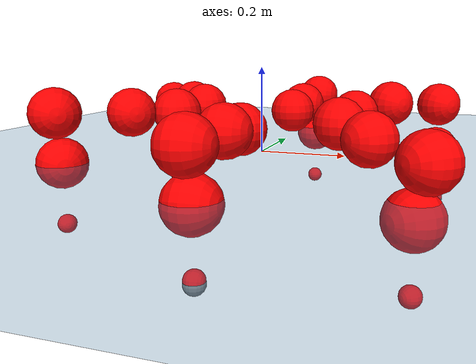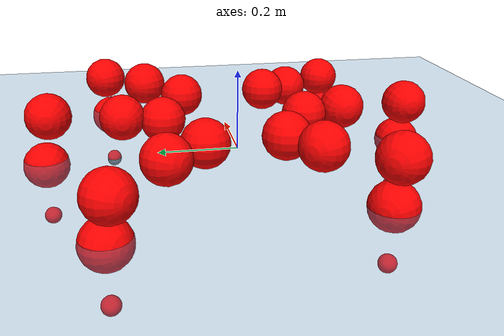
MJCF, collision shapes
<mujoco model="Golem">
  <compiler angle="radian" assetdir="assets" balanceinertia="true" inertiafromgeom="false"/>

  <option timestep="0.005" density="1.2" viscosity="2e-05"/>

  <size nkey="1"/>

  <visual>
    <quality shadowsize="8192"/>
    <map shadowclip="0.5"/>
  </visual>

  <default>
    <default class="/">
      <joint armature="0.01" damping="0.01" frictionloss="0.01"/>
      <geom contype="0" conaffinity="0" group="1" solref="-1000 -80"/>
      <site size="0.01 0.005 0.005" group="5"/>
      <general forcelimited="true" biastype="affine" gainprm="25" biasprm="0 -25 -0.5"/>
      <default class="visual">
        <geom type="mesh" group="2"/>
      </default>
      <default class="collision">
        <geom group="3"/>
      </default>
      <default class="foot">
        <geom size="0.01 0 0" condim="6" group="4" priority="1" solimp="0.015 1 0.01"/>
      </default>
      <default class="reward_collision_sphere">
        <geom group="5" rgba="1 0 0 1"/>
      </default>
    </default>
  </default>

  <asset>
    <texture type="skybox" colorspace="auto" name="//unnamed_texture_0" builtin="gradient" rgb1="0.95 0.95 0.95" rgb2="0.95 0.95 0.95" width="100" height="600"/>
    <texture type="2d" colorspace="auto" name="texplane" builtin="checker" rgb1="0.345 0.575 0.748" rgb2="0.345 0.575 0.748" markrgb="1 1 1" width="512" height="512"/>
    <material name="MatPlane" class="/" texture="texplane" texuniform="true" texrepeat="2 2" specular="0.9"/>
    <mesh name="body" class="/" file="body.stl" scale="0.001 0.001 0.001"/>
    <mesh name="coxa" class="/" file="coxa.stl" scale="0.001 0.001 0.001"/>
    <mesh name="femur" class="/" file="femur.stl" scale="0.001 0.001 0.001"/>
    <mesh name="tibia" class="/" file="tibia.stl" scale="0.001 0.001 0.001"/>
    <mesh name="tarsus" class="/" file="tarsus.stl" scale="0.001 0.001 0.001"/>
  </asset>

  <worldbody>
    <geom name="floor" class="/" size="100 100 0.125" type="plane" group="0" material="MatPlane"/>
    <light name="toplight_shadow" class="/" pos="0 0 5" dir="0.0990148 0.0990148 -0.990148" type="directional" ambient="0.04 0.04 0.04" diffuse="0.55 0.55 0.55" specular="0.12 0.12 0.12"/>
    <light name="toplight_fill" class="/" pos="0 0 5" dir="0.0990148 0.0990148 -0.990148" type="directional" castshadow="false" ambient="0.04 0.04 0.04" diffuse="0.3 0.3 0.3" specular="0.08 0.08 0.08"/>
    <body name="trunk" pos="0.0109583 0.0101437 -0.00492037" quat="0.999991 0.00197374 0.000355288 -0.00363988">
      <inertial pos="-0.0108271 -0.00416368 0.0159267" quat="0.99866 -0.0258995 -0.039931 -0.0202965" mass="9.34624" diaginertia="0.0295418 0.075684 0.0352406"/>
      <joint name="//unnamed_joint_0" type="free"/>
      <geom name="//unnamed_geom_1" class="/" pos="0 0 0.0871083" quat="1 0 0 0" type="mesh" rgba="0.9 0.9 0.9 1" mesh="body"/>
      <site name="imu" class="/" pos="0.0997422 -0.0546531 0.141246" size="0.0139886"/>
      <camera name="track" class="/" pos="0 -3.11098 0" quat="0.707107 0.707107 0 0" mode="trackcom"/>
      <camera name="ego_camera" class="/" pos="0.166403 0 0.136107" quat="-0.5 -0.5 0.5 0.5"/>
      <body name="coxa_RR" pos="-0.220706 -0.115635 0.100826" quat="0.381376 0.00279826 -0.00138654 -0.924415">
        <inertial pos="0.000977362 -0.00440784 -0.00714238" quat="0.999987 0.00294508 -0.00187106 0.00362258" mass="0.503155" diaginertia="0.0360197 0.0812485 0.0524693"/>
        <joint name="coxa_joint_RR" class="/" pos="0 0 0" axis="0.00842649 0.00738221 -0.999937" range="-3.13819 3.3003" armature="0.017456" damping="0.0390704" frictionloss="0.0162004"/>
        <geom name="//unnamed_geom_2" class="/" type="mesh" rgba="0.2 0.2 0.2 1" mesh="coxa"/>
        <geom name="//unnamed_geom_3" class="reward_collision_sphere" size="0.0559544" pos="-0.0384006 0 0"/>
        <body name="femur_RR" pos="0.0638919 -0.0169358 0.00403136" quat="0.500078 -0.499906 0.500025 0.499991">
          <inertial pos="0.0160849 -0.00029543 0.0172175" quat="0.996634 0.0547063 -0.0376841 -0.04804" mass="0.637901" diaginertia="0.0407313 0.10873 0.056661"/>
          <joint name="femur_joint_RR" class="/" pos="0 0 0" axis="0.0236322 -0.0378024 -0.999006" range="-3.01404 3.14382" armature="0.0154491" damping="0" frictionloss="0.014056"/>
          <geom name="//unnamed_geom_4" class="/" type="mesh" rgba="0.9 0.9 0.9 1" mesh="femur"/>
          <geom name="//unnamed_geom_5" class="reward_collision_sphere" size="0.0559544"/>
          <body name="tibia_RR" pos="-0.009413 -0.16741 0.0157927" quat="0.000750491 0.999999 -0.000214552 0.00121398">
            <inertial pos="-0.000834161 -0.000311897 0.013864" quat="0.998733 0.0275244 0.0119516 -0.0404034" mass="0.382589" diaginertia="0.0284123 0.0602146 0.0361241"/>
            <joint name="tibia_joint_RR" class="/" pos="0 0 0" axis="0.0432034 0.0485534 0.997886" stiffness="0.0475714" range="-2.9343 3.14672" armature="0.0202165" damping="0.0224485" frictionloss="0.0227215"/>
            <geom name="//unnamed_geom_6" class="/" type="mesh" rgba="0.2 0.2 0.2 1" mesh="tibia"/>
            <geom name="//unnamed_geom_7" class="reward_collision_sphere" size="0.0559544"/>
            <body name="tarsus_RR" pos="0.109482 -0.00789049 0.000251494" quat="1 -0.00038194 0.000189623 -0.000444434">
              <inertial pos="0.0849342 0.00128081 -0.000950837" quat="0.529886 0.498421 0.431421 0.533547" mass="0.485488" diaginertia="0.0349158 0.100935 0.0436731"/>
              <joint name="tarsus_joint_RR" class="/" pos="0 0 0" axis="-0.0627052 0.0548551 0.996523" range="-3.08341 3.35519" armature="0.0195058" damping="0.00813448" frictionloss="0.00959094"/>
              <geom name="//unnamed_geom_8" class="/" type="mesh" rgba="0.9 0.9 0.9 1" mesh="tarsus"/>
              <geom name="foot_1" class="foot" size="0.013898" pos="0.143362 0 0" quat="0 -0.707107 0 0.707107"/>
              <geom name="//unnamed_geom_10" class="reward_collision_sphere" size="0.0559544"/>
              <geom name="//unnamed_geom_11" class="reward_collision_sphere" size="0.0209829" pos="0.137602 0 0"/>
              <site name="foot_1" class="foot" pos="0.143362 0 0" quat="0 -0.707107 0 0.707107" size="0.0139886"/>
            </body>
          </body>
        </body>
      </body>
      <body name="coxa_RM" pos="0.00429145 -0.221387 0.0843278" quat="0.712857 -0.000230227 0.00165048 -0.701307">
        <inertial pos="0.0131302 -0.00155817 0.0149117" quat="0.998151 -0.0127827 0.0456405 -0.0380451" mass="0.535862" diaginertia="0.0466756 0.0902885 0.0556806"/>
        <joint name="coxa_joint_RM" class="/" pos="0 0 0" axis="-0.000298604 -0.00074453 -1" range="-3.03739 3.21364" armature="0.0109467" damping="0.0275723" frictionloss="0.0197984"/>
        <geom name="//unnamed_geom_12" class="/" type="mesh" rgba="0.2 0.2 0.2 1" mesh="coxa"/>
        <geom name="//unnamed_geom_13" class="reward_collision_sphere" size="0.0559544" pos="-0.0384006 0 0"/>
        <body name="femur_RM" pos="0.0627805 0.0045001 0.0113104" quat="0.496681 -0.500004 0.498616 0.504664">
          <inertial pos="-0.0152534 -0.000842257 -0.00064124" quat="0.996812 0.0545841 0.0523832 -0.025335" mass="0.590278" diaginertia="0.0320014 0.106524 0.049662"/>
          <joint name="femur_joint_RM" class="/" pos="0 0 0" axis="-0.0198419 0.0622546 -0.997863" stiffness="0.0499058" range="-3.17548 3.14756" armature="0.00912003" damping="0" frictionloss="0.0163966"/>
          <geom name="//unnamed_geom_14" class="/" type="mesh" rgba="0.9 0.9 0.9 1" mesh="femur"/>
          <geom name="//unnamed_geom_15" class="reward_collision_sphere" size="0.0559544"/>
          <body name="tibia_RM" pos="-0.00407954 -0.171128 -0.000370579" quat="-9.27151e-05 1 3.33045e-06 -5.54472e-05">
            <inertial pos="0.0160391 -0.00796329 0.010245" quat="0.999751 0.0109473 -0.00406532 -0.0190045" mass="0.443925" diaginertia="0.026766 0.0968131 0.0518193"/>
            <joint name="tibia_joint_RM" class="/" pos="0 0 0" axis="-0.0495044 0.0233327 0.998501" stiffness="0.0273287" range="-3.18345 3.29552" armature="0.0130337" damping="0.0120803" frictionloss="0.0193268"/>
            <geom name="//unnamed_geom_16" class="/" type="mesh" rgba="0.2 0.2 0.2 1" mesh="tibia"/>
            <geom name="//unnamed_geom_17" class="reward_collision_sphere" size="0.0559544"/>
            <body name="tarsus_RM" pos="0.102826 -0.00810677 -0.00481016" quat="0.999999 0.000834314 0.0003281 0.000881079">
              <inertial pos="0.0822801 0.00669005 0.00319922" quat="0.490394 0.501569 0.486685 0.520654" mass="0.480257" diaginertia="0.036972 0.0841004 0.0361957"/>
              <joint name="tarsus_joint_RM" class="/" pos="0 0 0" axis="0.0200935 -0.0587255 0.998072" range="-3.1959 3.14939" armature="0.015023" damping="0.00824716" frictionloss="0.0119693"/>
              <geom name="//unnamed_geom_18" class="/" type="mesh" rgba="0.9 0.9 0.9 1" mesh="tarsus"/>
              <geom name="foot_2" class="foot" size="0.0216352" pos="0.143362 0 0" quat="0 -0.707107 0 0.707107"/>
              <geom name="//unnamed_geom_20" class="reward_collision_sphere" size="0.0559544"/>
              <geom name="//unnamed_geom_21" class="reward_collision_sphere" size="0.0209829" pos="0.137602 0 0"/>
              <site name="foot_2" class="foot" pos="0.143362 0 0" quat="0 -0.707107 0 0.707107" size="0.0139886"/>
            </body>
          </body>
        </body>
      </body>
      <body name="coxa_RF" pos="0.225493 -0.143067 0.0952463" quat="0.923868 2.29086e-05 -7.26708e-05 -0.382711">
        <inertial pos="0.0168644 -0.00469837 -0.00208687" quat="0.997725 0.0622583 -0.0150396 -0.021042" mass="0.383775" diaginertia="0.027014 0.0977013 0.0422307"/>
        <joint name="coxa_joint_RF" class="/" pos="0 0 0" axis="0.00136234 -0.00162073 -0.999998" range="-2.97555 3.1342" armature="0.00604923" damping="0.0381585" frictionloss="0.0188862"/>
        <geom name="//unnamed_geom_22" class="/" type="mesh" rgba="0.2 0.2 0.2 1" mesh="coxa"/>
        <geom name="//unnamed_geom_23" class="reward_collision_sphere" size="0.0559544" pos="-0.0384006 0 0"/>
        <body name="femur_RF" pos="0.0765948 -0.00602114 -0.0149289" quat="0.500704 -0.497282 0.500025 0.501978">
          <inertial pos="-0.00988296 -0.0159741 -0.0094864" quat="0.999882 0.00177997 -0.00507564 0.0144087" mass="0.622166" diaginertia="0.0296379 0.105939 0.0486987"/>
          <joint name="femur_joint_RF" class="/" pos="0 0 0" axis="-0.0515872 -0.0132919 -0.99858" stiffness="0.0779467" range="-3.22971 3.36151" armature="0.013949" damping="0" frictionloss="0.018145"/>
          <geom name="//unnamed_geom_24" class="/" type="mesh" rgba="0.9 0.9 0.9 1" mesh="femur"/>
          <geom name="//unnamed_geom_25" class="reward_collision_sphere" size="0.0559544"/>
          <body name="tibia_RF" pos="0.008566 -0.180719 -0.0126764" quat="-0.0010057 0.999999 -0.000847991 0.000406291">
            <inertial pos="0.0146232 0.0116069 -0.0135042" quat="0.998775 -0.00358361 0.0254054 -0.0423174" mass="0.465162" diaginertia="0.0346127 0.0874321 0.0456487"/>
            <joint name="tibia_joint_RF" class="/" pos="0 0 0" axis="0.0149754 -0.0187293 0.999712" range="-3.19553 3.37583" armature="0.0157074" damping="0.0942619" frictionloss="0.0122223"/>
            <geom name="//unnamed_geom_26" class="/" type="mesh" rgba="0.2 0.2 0.2 1" mesh="tibia"/>
            <geom name="//unnamed_geom_27" class="reward_collision_sphere" size="0.0559544"/>
            <body name="tarsus_RF" pos="0.0995368 -0.014752 0.0142571" quat="0.999984 -0.00391593 0.00103631 0.00388727">
              <inertial pos="0.0793905 0.000769757 0.00180253" quat="0.519449 0.486516 0.505643 0.487647" mass="0.498732" diaginertia="0.0308201 0.0724826 0.0544633"/>
              <joint name="tarsus_joint_RF" class="/" pos="0 0 0" axis="-0.0255976 0.0265055 0.999321" stiffness="0.0304748" range="-2.95173 3.13646" armature="0.00542105" damping="0" frictionloss="0.00213116"/>
              <geom name="//unnamed_geom_28" class="/" type="mesh" rgba="0.9 0.9 0.9 1" mesh="tarsus"/>
              <geom name="foot_3" class="foot" size="0.00596312" pos="0.143362 0 0" quat="0 -0.707107 0 0.707107"/>
              <geom name="//unnamed_geom_30" class="reward_collision_sphere" size="0.0559544"/>
              <geom name="//unnamed_geom_31" class="reward_collision_sphere" size="0.0209829" pos="0.137602 0 0"/>
              <site name="foot_3" class="foot" pos="0.143362 0 0" quat="0 -0.707107 0 0.707107" size="0.0139886"/>
            </body>
          </body>
        </body>
      </body>
      <body name="coxa_LR" pos="-0.234817 0.122579 0.0984188" quat="0.379179 0.00268598 0.00575446 0.925302">
        <inertial pos="0.00437922 -0.00573877 0.0164539" quat="0.998043 0.0479028 0.00401942 -0.0399952" mass="0.780002" diaginertia="0.0422939 0.111321 0.0534586"/>
        <joint name="coxa_joint_LR" class="/" pos="0 0 0" axis="-0.000835436 -0.000608691 -0.999999" range="-3.00958 2.80747" armature="0.0053606" damping="0" frictionloss="0.0255487"/>
        <geom name="//unnamed_geom_32" class="/" type="mesh" rgba="0.2 0.2 0.2 1" mesh="coxa"/>
        <geom name="//unnamed_geom_33" class="reward_collision_sphere" size="0.0559544" pos="-0.0384006 0 0"/>
        <body name="femur_LR" pos="0.0782285 -0.0105265 -0.000608492" quat="0.500915 -0.499214 0.499702 0.500166">
          <inertial pos="0.000524678 0.00313348 0.00342258" quat="0.998778 0.0375153 0.0317829 -0.00499419" mass="0.611241" diaginertia="0.0424139 0.0804226 0.0503325"/>
          <joint name="femur_joint_LR" class="/" pos="0 0 0" axis="-0.00914879 0.0321511 0.999441" stiffness="0.0530661" range="-3.18842 3.38831" armature="0.00670168" damping="0" frictionloss="0.0185696"/>
          <geom name="//unnamed_geom_34" class="/" type="mesh" rgba="0.9 0.9 0.9 1" mesh="femur"/>
          <geom name="//unnamed_geom_35" class="reward_collision_sphere" size="0.0559544"/>
          <body name="tibia_LR" pos="0.0133568 -0.170946 0.00643468" quat="0.00564602 0.99998 -0.00266827 -5.493e-05">
            <inertial pos="-0.0106482 -0.0155274 -0.00157017" quat="0.997941 -0.0156922 0.0523608 0.0335576" mass="0.651607" diaginertia="0.0281356 0.078926 0.058498"/>
            <joint name="tibia_joint_LR" class="/" pos="0 0 0" axis="-0.000237225 -0.000286073 -1" range="-3.11577 3.14727" armature="0.00884961" damping="0" frictionloss="0.00712966"/>
            <geom name="//unnamed_geom_36" class="/" type="mesh" rgba="0.2 0.2 0.2 1" mesh="tibia"/>
            <geom name="//unnamed_geom_37" class="reward_collision_sphere" size="0.0559544"/>
            <body name="tarsus_LR" pos="0.0981772 0.00710355 0.00906062" quat="0.999991 0.000898427 0.00205451 0.00356234">
              <inertial pos="0.0857811 0.0106127 0.00720265" quat="0.478726 0.528847 0.511901 0.478643" mass="0.697659" diaginertia="0.0441672 0.109795 0.0564774"/>
              <joint name="tarsus_joint_LR" class="/" pos="0 0 0" axis="0.00702575 0.0141363 -0.999875" range="-3.04804 3.24228" armature="0.0263152" damping="0.00147336" frictionloss="0.0190426"/>
              <geom name="//unnamed_geom_38" class="/" type="mesh" rgba="0.9 0.9 0.9 1" mesh="tarsus"/>
              <geom name="foot_4" class="foot" size="0.0111257" pos="0.143362 0 0" quat="0.707107 0 -0.707107 0"/>
              <geom name="//unnamed_geom_40" class="reward_collision_sphere" size="0.0559544"/>
              <geom name="//unnamed_geom_41" class="reward_collision_sphere" size="0.0209829" pos="0.137602 0 0"/>
              <site name="foot_4" class="foot" pos="0.143362 0 0" quat="0.707107 0 -0.707107 0" size="0.0139886"/>
            </body>
          </body>
        </body>
      </body>
      <body name="coxa_LM" pos="0.0110345 0.212393 0.0839225" quat="0.71152 0.00160553 -0.00603902 0.702638">
        <inertial pos="-0.0134737 0.0145363 0.0100912" quat="0.997787 -0.0135006 -0.0468385 -0.0452148" mass="0.529551" diaginertia="0.0352248 0.0761125 0.0420669"/>
        <joint name="coxa_joint_LM" class="/" pos="0 0 0" axis="-0.00256832 -0.000141375 -0.999997" range="-3.11265 3.11599" armature="0.00279166" damping="0.0546852" frictionloss="0.0091931"/>
        <geom name="//unnamed_geom_42" class="/" type="mesh" rgba="0.2 0.2 0.2 1" mesh="coxa"/>
        <geom name="//unnamed_geom_43" class="reward_collision_sphere" size="0.0559544" pos="-0.0384006 0 0"/>
        <body name="femur_LM" pos="0.0599937 -0.0010664 0.00832248" quat="0.499081 -0.496019 0.500434 0.504429">
          <inertial pos="0.0131105 -0.000882462 0.0146274" quat="0.998722 0.0269615 0.0415505 0.0100354" mass="0.384193" diaginertia="0.0313487 0.0741728 0.0396111"/>
          <joint name="femur_joint_LM" class="/" pos="0 0 0" axis="-0.00705059 -0.00839322 0.99994" stiffness="0.00116401" range="-3.35327 3.01401" armature="0.00586585" damping="0.0504447" frictionloss="0.0143919"/>
          <geom name="//unnamed_geom_44" class="/" type="mesh" rgba="0.9 0.9 0.9 1" mesh="femur"/>
          <geom name="//unnamed_geom_45" class="reward_collision_sphere" size="0.0559544"/>
          <body name="tibia_LM" pos="-0.0103813 -0.175312 -0.000448088" quat="0.00243901 0.999995 0.00213169 -0.000336611">
            <inertial pos="-0.0161362 -0.0167901 -0.017193" quat="0.999988 -0.00366038 0.00207664 -0.00247557" mass="0.56291" diaginertia="0.0392592 0.110796 0.0409749"/>
            <joint name="tibia_joint_LM" class="/" pos="0 0 0" axis="-0.0479666 -0.0042881 -0.99884" stiffness="0.0593336" range="-3.26576 3.12387" armature="0.00574458" damping="0" frictionloss="0.0226665"/>
            <geom name="//unnamed_geom_46" class="/" type="mesh" rgba="0.2 0.2 0.2 1" mesh="tibia"/>
            <geom name="//unnamed_geom_47" class="reward_collision_sphere" size="0.0559544"/>
            <body name="tarsus_LM" pos="0.120243 0.0138629 -0.0129729" quat="0.999985 -0.000766231 -0.00103268 -0.00535579">
              <inertial pos="0.069321 -0.00806074 -0.0105026" quat="0.501473 0.5109 0.486061 0.501249" mass="0.434731" diaginertia="0.0326357 0.0564292 0.0410041"/>
              <joint name="tarsus_joint_LM" class="/" pos="0 0 0" axis="0.0646306 -0.0016241 -0.997908" range="-2.78072 3.06187" armature="0.0136108" damping="0" frictionloss="0.0138822"/>
              <geom name="//unnamed_geom_48" class="/" type="mesh" rgba="0.9 0.9 0.9 1" mesh="tarsus"/>
              <geom name="foot_5" class="foot" size="0.0140338" pos="0.143362 0 0" quat="0.707107 0 -0.707107 0"/>
              <geom name="//unnamed_geom_50" class="reward_collision_sphere" size="0.0559544"/>
              <geom name="//unnamed_geom_51" class="reward_collision_sphere" size="0.0209829" pos="0.137602 0 0"/>
              <site name="foot_5" class="foot" pos="0.143362 0 0" quat="0.707107 0 -0.707107 0" size="0.0139886"/>
            </body>
          </body>
        </body>
      </body>
      <body name="coxa_LF" pos="0.216958 0.138321 0.0908939" quat="0.926138 -0.000637588 -0.00434943 0.377159">
        <inertial pos="0.000737563 -0.0164425 0.0016667" quat="0.999929 0.0057339 0.00991615 -0.0033741" mass="0.503785" diaginertia="0.030793 0.060886 0.0364438"/>
        <joint name="coxa_joint_LF" class="/" pos="0 0 0" axis="-0.0171842 -0.0513107 -0.998535" range="-3.14319 3.07711" armature="0.00238135" damping="0" frictionloss="0.00945247"/>
        <geom name="//unnamed_geom_52" class="/" type="mesh" rgba="0.2 0.2 0.2 1" mesh="coxa"/>
        <geom name="//unnamed_geom_53" class="reward_collision_sphere" size="0.0559544" pos="-0.0384006 0 0"/>
        <body name="femur_LF" pos="0.0823014 0.0178726 0.0155659" quat="0.49881 -0.502714 0.495175 0.503258">
          <inertial pos="-0.0113617 0.0051192 -0.0171586" quat="0.997497 0.0440194 -0.0435793 -0.0340884" mass="0.519539" diaginertia="0.0386561 0.0707356 0.0482172"/>
          <joint name="femur_joint_LF" class="/" pos="0 0 0" axis="-0.0572856 -0.0255188 0.998032" stiffness="0.059174" range="-3.11436 3.45835" armature="0.014878" damping="0.0651194" frictionloss="0.00993987"/>
          <geom name="//unnamed_geom_54" class="/" type="mesh" rgba="0.9 0.9 0.9 1" mesh="femur"/>
          <geom name="//unnamed_geom_55" class="reward_collision_sphere" size="0.0559544"/>
          <body name="tibia_LF" pos="0.0117334 -0.158877 -0.00222779" quat="-0.00529207 0.999974 -0.00243435 0.00417165">
            <inertial pos="-0.00558073 0.0155358 -0.000292747" quat="0.999752 -0.00706712 0.0152661 -0.0146021" mass="0.564163" diaginertia="0.0387723 0.0910765 0.0511256"/>
            <joint name="tibia_joint_LF" class="/" pos="0 0 0" axis="0.0672493 0.00311598 -0.997731" stiffness="0.0117561" range="-2.86869 3.08147" armature="0.00683475" damping="0.00796573" frictionloss="0.00355634"/>
            <geom name="//unnamed_geom_56" class="/" type="mesh" rgba="0.2 0.2 0.2 1" mesh="tibia"/>
            <geom name="//unnamed_geom_57" class="reward_collision_sphere" size="0.0559544"/>
            <body name="tarsus_LF" pos="0.116005 -0.0106232 0.00838464" quat="0.999962 -0.000376792 -0.00750083 0.00450576">
              <inertial pos="0.0876873 0.00433363 0.0024496" quat="0.507779 0.491117 0.508501 0.492333" mass="0.521364" diaginertia="0.0361233 0.0942249 0.0528764"/>
              <joint name="tarsus_joint_LF" class="/" pos="0 0 0" axis="0.085805 -0.00161016 -0.996311" range="-3.28657 3.40756" armature="0.00906404" damping="0.0777786" frictionloss="0.00753001"/>
              <geom name="//unnamed_geom_58" class="/" type="mesh" rgba="0.9 0.9 0.9 1" mesh="tarsus"/>
              <geom name="foot_6" class="foot" size="0.0210967" pos="0.143362 0 0" quat="0.707107 0 -0.707107 0"/>
              <geom name="//unnamed_geom_60" class="reward_collision_sphere" size="0.0559544"/>
              <geom name="//unnamed_geom_61" class="reward_collision_sphere" size="0.0209829" pos="0.137602 0 0"/>
              <site name="foot_6" class="foot" pos="0.143362 0 0" quat="0.707107 0 -0.707107 0" size="0.0139886"/>
            </body>
          </body>
        </body>
      </body>
    </body>
  </worldbody>

  <contact>
    <pair class="/" geom1="floor" geom2="foot_1" name="//unnamed_contact_0"/>
    <pair class="/" geom1="floor" geom2="foot_2" name="//unnamed_contact_1"/>
    <pair class="/" geom1="floor" geom2="foot_3" name="//unnamed_contact_2"/>
    <pair class="/" geom1="floor" geom2="foot_4" name="//unnamed_contact_3"/>
    <pair class="/" geom1="floor" geom2="foot_5" name="//unnamed_contact_4"/>
    <pair class="/" geom1="floor" geom2="foot_6" name="//unnamed_contact_5"/>
  </contact>

  <actuator>
    <general name="coxa_joint_RR" class="/" joint="coxa_joint_RR" forcerange="-16.2106 16.2106" gainprm="28.4871" biasprm="0 -28.4871 -0.883106"/>
    <general name="femur_joint_RR" class="/" joint="femur_joint_RR" forcerange="-6.85062 6.85062" gainprm="28.4871" biasprm="0 -28.4871 -0.883106"/>
    <general name="tibia_joint_RR" class="/" joint="tibia_joint_RR" forcerange="-16.6443 16.6443" gainprm="28.4871" biasprm="0 -28.4871 -0.883106"/>
    <general name="tarsus_joint_RR" class="/" joint="tarsus_joint_RR" forcerange="-6.50077 6.50077" gainprm="28.4871" biasprm="0 -28.4871 -0.883106"/>
    <general name="coxa_joint_RM" class="/" joint="coxa_joint_RM" forcerange="-10.104 10.104" gainprm="28.4871" biasprm="0 -28.4871 -0.883106"/>
    <general name="femur_joint_RM" class="/" joint="femur_joint_RM" forcerange="-10.3049 10.3049" gainprm="28.4871" biasprm="0 -28.4871 -0.883106"/>
    <general name="tibia_joint_RM" class="/" joint="tibia_joint_RM" forcerange="-15.8027 15.8027" gainprm="28.4871" biasprm="0 -28.4871 -0.883106"/>
    <general name="tarsus_joint_RM" class="/" joint="tarsus_joint_RM" forcerange="-3.93889 3.93889" gainprm="28.4871" biasprm="0 -28.4871 -0.883106"/>
    <general name="coxa_joint_RF" class="/" joint="coxa_joint_RF" forcerange="-8.14677 8.14677" gainprm="28.4871" biasprm="0 -28.4871 -0.883106"/>
    <general name="femur_joint_RF" class="/" joint="femur_joint_RF" forcerange="-10.984 10.984" gainprm="28.4871" biasprm="0 -28.4871 -0.883106"/>
    <general name="tibia_joint_RF" class="/" joint="tibia_joint_RF" forcerange="-4.3351 4.3351" gainprm="28.4871" biasprm="0 -28.4871 -0.883106"/>
    <general name="tarsus_joint_RF" class="/" joint="tarsus_joint_RF" forcerange="-6.9407 6.9407" gainprm="28.4871" biasprm="0 -28.4871 -0.883106"/>
    <general name="coxa_joint_LR" class="/" joint="coxa_joint_LR" forcerange="-10.3852 10.3852" gainprm="28.4871" biasprm="0 -28.4871 -0.883106"/>
    <general name="femur_joint_LR" class="/" joint="femur_joint_LR" forcerange="-15.2805 15.2805" gainprm="28.4871" biasprm="0 -28.4871 -0.883106"/>
    <general name="tibia_joint_LR" class="/" joint="tibia_joint_LR" forcerange="-13.4445 13.4445" gainprm="28.4871" biasprm="0 -28.4871 -0.883106"/>
    <general name="tarsus_joint_LR" class="/" joint="tarsus_joint_LR" forcerange="-14.486 14.486" gainprm="28.4871" biasprm="0 -28.4871 -0.883106"/>
    <general name="coxa_joint_LM" class="/" joint="coxa_joint_LM" forcerange="-13.4462 13.4462" gainprm="28.4871" biasprm="0 -28.4871 -0.883106"/>
    <general name="femur_joint_LM" class="/" joint="femur_joint_LM" forcerange="-12.6296 12.6296" gainprm="28.4871" biasprm="0 -28.4871 -0.883106"/>
    <general name="tibia_joint_LM" class="/" joint="tibia_joint_LM" forcerange="-14.8033 14.8033" gainprm="28.4871" biasprm="0 -28.4871 -0.883106"/>
    <general name="tarsus_joint_LM" class="/" joint="tarsus_joint_LM" forcerange="-12.2281 12.2281" gainprm="28.4871" biasprm="0 -28.4871 -0.883106"/>
    <general name="coxa_joint_LF" class="/" joint="coxa_joint_LF" forcerange="-13.0576 13.0576" gainprm="28.4871" biasprm="0 -28.4871 -0.883106"/>
    <general name="femur_joint_LF" class="/" joint="femur_joint_LF" forcerange="-7.93708 7.93708" gainprm="28.4871" biasprm="0 -28.4871 -0.883106"/>
    <general name="tibia_joint_LF" class="/" joint="tibia_joint_LF" forcerange="-5.88556 5.88556" gainprm="28.4871" biasprm="0 -28.4871 -0.883106"/>
    <general name="tarsus_joint_LF" class="/" joint="tarsus_joint_LF" forcerange="-13.3767 13.3767" gainprm="28.4871" biasprm="0 -28.4871 -0.883106"/>
  </actuator>

  <sensor>
    <gyro site="imu" name="imu_angular_velocity"/>
    <velocimeter site="imu" name="imu_linear_velocity"/>
    <framelinvel objtype="site" objname="foot_1" name="foot_1_global_linear_velocity"/>
    <framelinvel objtype="site" objname="foot_2" name="foot_2_global_linear_velocity"/>
    <framelinvel objtype="site" objname="foot_3" name="foot_3_global_linear_velocity"/>
    <framelinvel objtype="site" objname="foot_4" name="foot_4_global_linear_velocity"/>
    <framelinvel objtype="site" objname="foot_5" name="foot_5_global_linear_velocity"/>
    <framelinvel objtype="site" objname="foot_6" name="foot_6_global_linear_velocity"/>
  </sensor>

  <keyframe>
    <key name="home" qpos="0 0 0.1457 1 0 0 0 0 0 0 0 0 0 0 0 0 0 0 0 0 0 0 0 0 0 0 0 0 0 0 0"/>
  </keyframe>
</mujoco>
